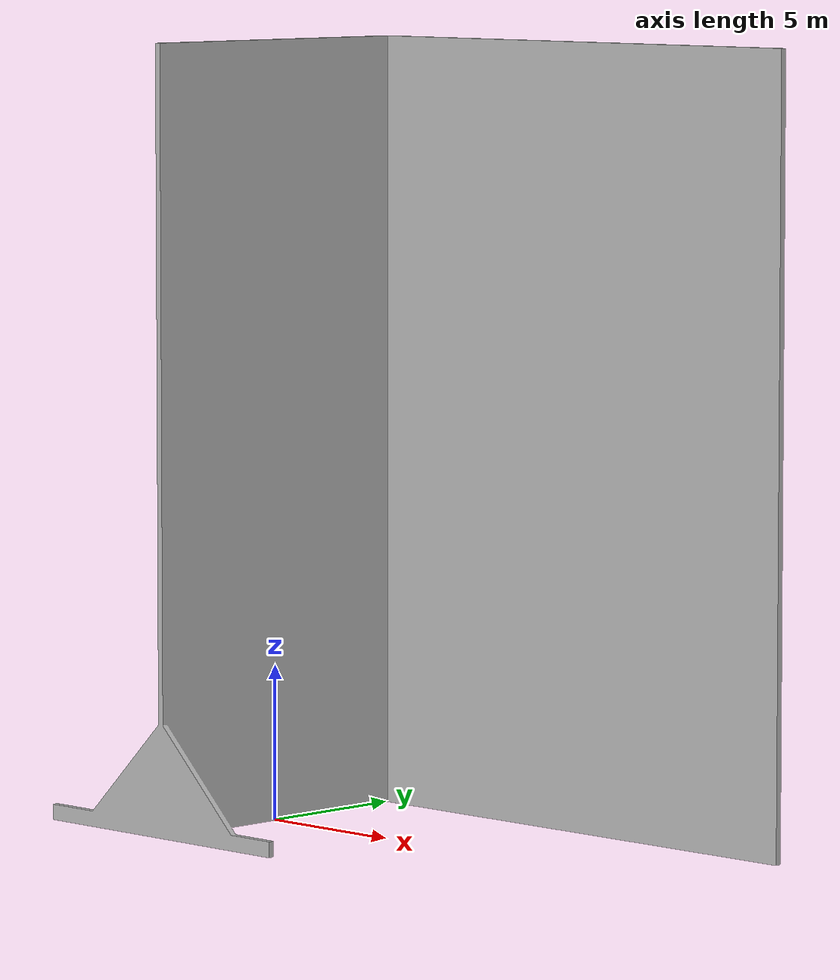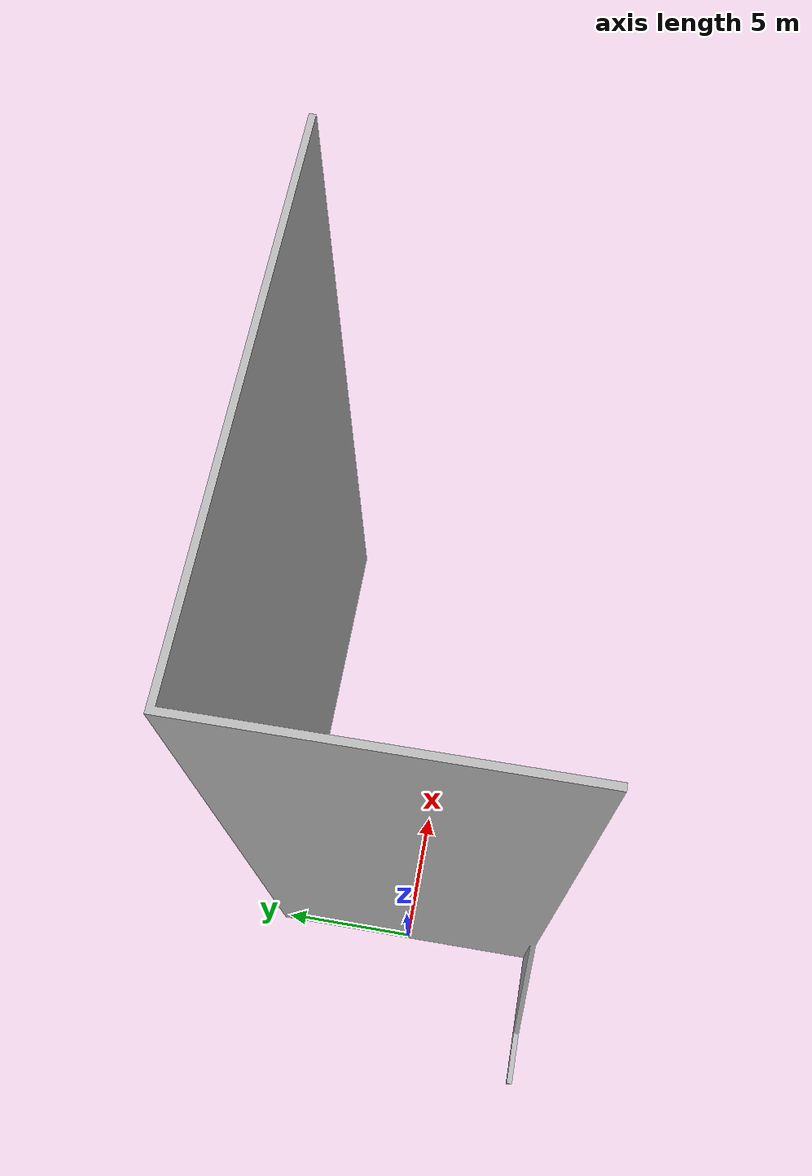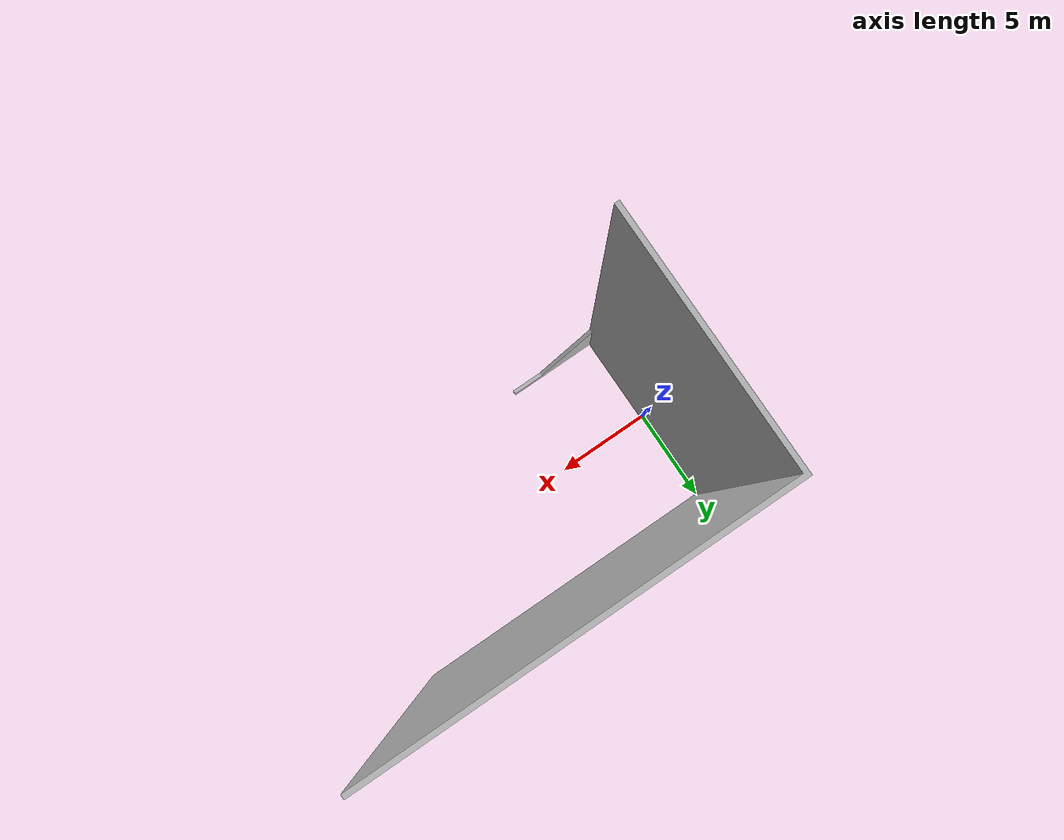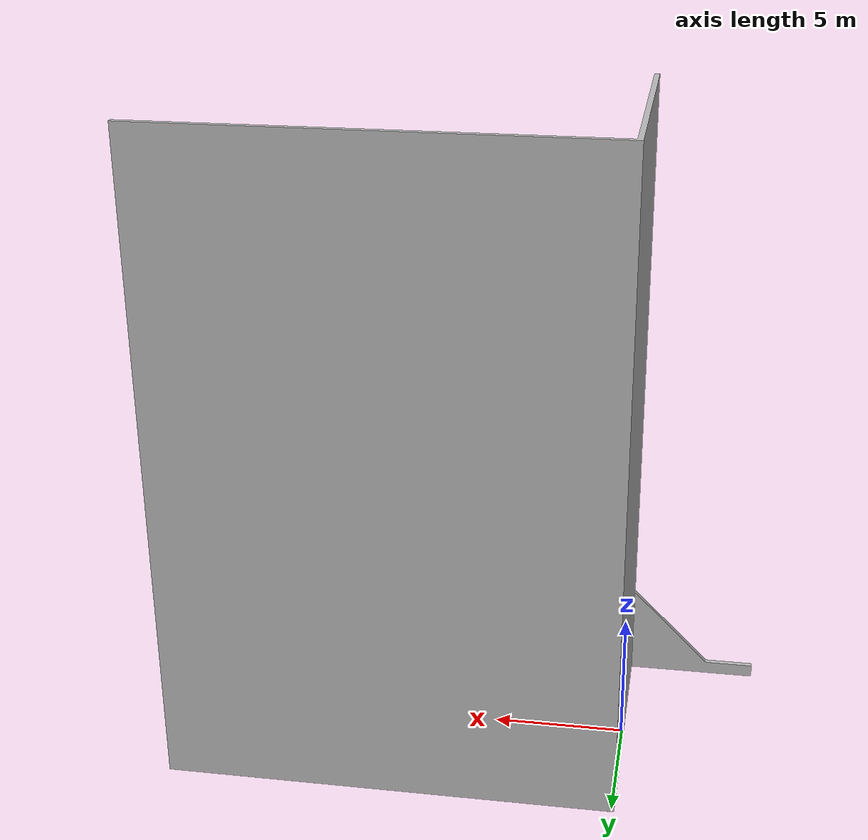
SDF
<?xml version='1.0'?>
<sdf version="1.4">
  <model name="my_model">
    <pose>0 0 0 0 0 0</pose>
    <static>false</static>
    <link name="link">

      <collision name="collision_wall">
        <geometry>
          <mesh>
          <uri>model://corner_wall/mashes/corner_wall.dae</uri>
	   <scale>1 1 1</scale>
          </mesh>
        </geometry>
      </collision>
      <visual name="visual">
        <geometry>
          <mesh>
          <uri>model://corner_wall/mashes/corner_wall.dae</uri>
	   <scale>1 1 1</scale>
          </mesh>
        </geometry>
      </visual>
    </link>
  </model>
</sdf>
